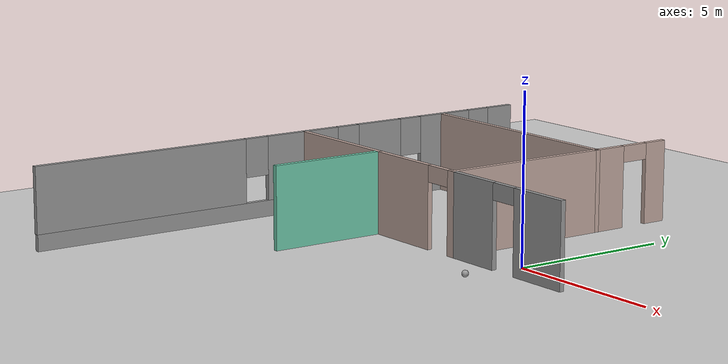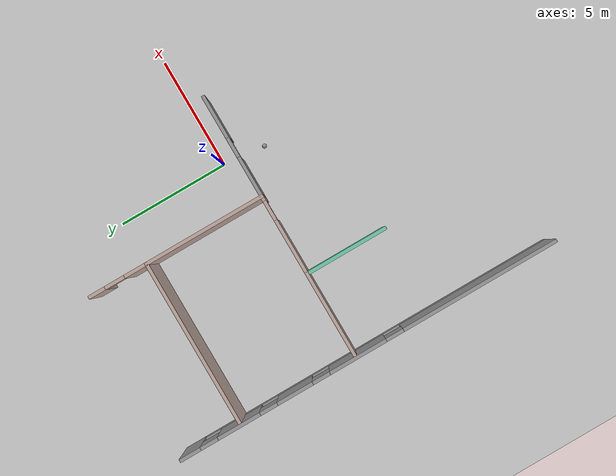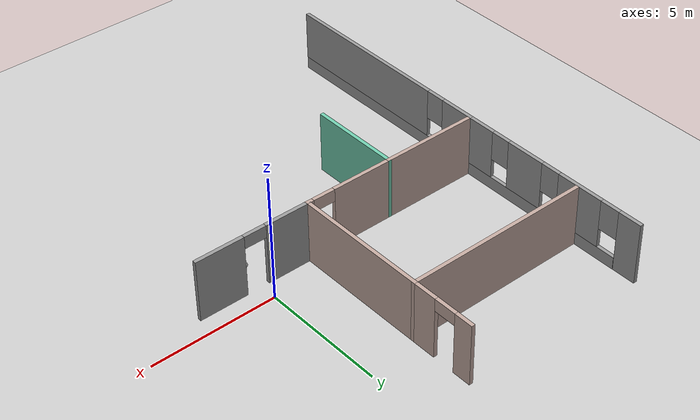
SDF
<sdf version="1.6">
 <world name="default">
  <model name="ground_plane">
   <static>1</static>
   <link name="link">
    <collision name="collision">
     <geometry><plane><normal>0 0 1</normal><size>100 100</size></plane></geometry>
     <surface>
      <contact><collide_bitmask>65535</collide_bitmask></contact>
      <friction><ode><mu>100</mu><mu2>50</mu2></ode></friction>
     </surface>
    </collision>
    <visual name="visual">
     <cast_shadows>0</cast_shadows>
     <geometry><plane><normal>0 0 1</normal><size>100 100</size></plane></geometry>
     <material>
      <script><uri>file://media/materials/scripts/gazebo.material</uri><name>Gazebo/Grey</name></script>
     </material>
    </visual>
   </link>
  </model>
  <model name="my_ball">
   <link name="link_0">
    <inertial>
     <mass>0.3</mass>
     <inertia><ixx>0.1</ixx><ixy>0</ixy><ixz>0</ixz><iyy>0.1</iyy><iyz>0</iyz><izz>0.1</izz></inertia>
    </inertial>
    <visual name="visual">
     <geometry><sphere><radius>0.1</radius></sphere></geometry>
     <material>
      <lighting>1</lighting>
      <script><uri>file://media/materials/scripts/gazebo.material</uri><name>Gazebo/Grey</name></script>
      <shader type="pixel"><normal_map>__default__</normal_map></shader>
      <ambient>1 1 1 1</ambient>
      <diffuse>0.7 0.7 0.7 1</diffuse>
      <specular>0.01 0.01 0.01 1</specular>
      <emissive>0 0 0 1</emissive>
     </material>
    </visual>
    <collision name="collision">
     <geometry><sphere><radius>0.1</radius></sphere></geometry>
     <surface>
      <friction>
       <ode><mu>1</mu><mu2>1</mu2><fdir1>0 0 0</fdir1><slip1>0</slip1><slip2>0</slip2></ode>
       <torsional>
        <coefficient>1</coefficient>
        <patch_radius>0</patch_radius>
        <surface_radius>0</surface_radius>
        <use_patch_radius>1</use_patch_radius>
        <ode><slip>0</slip></ode>
       </torsional>
      </friction>
      <bounce><restitution_coefficient>0</restitution_coefficient><threshold>1e+06</threshold></bounce>
      <contact>
       <collide_without_contact>0</collide_without_contact>
       <collide_without_contact_bitmask>1</collide_without_contact_bitmask>
       <collide_bitmask>1</collide_bitmask>
       <ode>
        <soft_cfm>0</soft_cfm>
        <soft_erp>0.2</soft_erp>
        <kp>1e+13</kp>
        <kd>1</kd>
        <max_vel>0.01</max_vel>
        <min_depth>0</min_depth>
       </ode>
       <bullet>
        <split_impulse>1</split_impulse>
        <split_impulse_penetration_threshold>-0.01</split_impulse_penetration_threshold>
        <soft_cfm>0</soft_cfm>
        <soft_erp>0.2</soft_erp>
        <kp>1e+13</kp>
        <kd>1</kd>
       </bullet>
      </contact>
     </surface>
    </collision>
   </link>
   <static>0</static>
   <pose>-0.177951 -1.88001 0.1 0 -0 0</pose>
  </model>
  <model name="Building">
   <link name="Wall_1">
    <pose>-10.4348 0 0 0 0 -1.5708</pose>
    <inertial>
     <mass>1</mass>
     <inertia><ixx>1</ixx><ixy>0</ixy><ixz>0</ixz><iyy>1</iyy><iyz>0</iyz><izz>1</izz></inertia>
    </inertial>
    <visual name="Wall_1_Visual_8">
     <pose>-2.17654 0 1.9 0 -0 0</pose>
     <geometry><box><size>0.8 0.15 1.2</size></box></geometry>
     <material>
      <script><uri>file://media/materials/scripts/gazebo.material</uri><name>Gazebo/Grey</name></script>
      <ambient>0.5 0.5 0.5 1</ambient>
      <shader type="pixel"><normal_map>__default__</normal_map></shader>
      <diffuse>0.7 0.7 0.7 1</diffuse>
      <specular>0.01 0.01 0.01 1</specular>
      <emissive>0 0 0 1</emissive>
     </material>
     <meta><layer>0</layer></meta>
    </visual>
    <visual name="Wall_1_Visual_3">
     <pose>-3.3971 0 1.5 0 -0 0</pose>
     <geometry><box><size>1.64112 0.15 2</size></box></geometry>
     <material>
      <script><uri>file://media/materials/scripts/gazebo.material</uri><name>Gazebo/Grey</name></script>
      <ambient>0.5 0.5 0.5 1</ambient>
      <shader type="pixel"><normal_map>__default__</normal_map></shader>
      <diffuse>0.7 0.7 0.7 1</diffuse>
      <specular>0.01 0.01 0.01 1</specular>
      <emissive>0 0 0 1</emissive>
     </material>
     <meta><layer>0</layer></meta>
    </visual>
    <visual name="Wall_1_Visual_6">
     <pose>-7.38426 0 1.9 0 -0 0</pose>
     <geometry><box><size>0.8 0.15 1.2</size></box></geometry>
     <material>
      <script><uri>file://media/materials/scripts/gazebo.material</uri><name>Gazebo/Grey</name></script>
      <ambient>0.5 0.5 0.5 1</ambient>
      <shader type="pixel"><normal_map>__default__</normal_map></shader>
      <diffuse>0.7 0.7 0.7 1</diffuse>
      <specular>0.01 0.01 0.01 1</specular>
      <emissive>0 0 0 1</emissive>
     </material>
     <meta><layer>0</layer></meta>
    </visual>
    <visual name="Wall_1_Visual_2">
     <pose>-6.00096 0 1.5 0 -0 0</pose>
     <geometry><box><size>1.9666 0.15 2</size></box></geometry>
     <material>
      <script><uri>file://media/materials/scripts/gazebo.material</uri><name>Gazebo/Grey</name></script>
      <ambient>0.5 0.5 0.5 1</ambient>
      <shader type="pixel"><normal_map>__default__</normal_map></shader>
      <diffuse>0.7 0.7 0.7 1</diffuse>
      <specular>0.01 0.01 0.01 1</specular>
      <emissive>0 0 0 1</emissive>
     </material>
     <meta><layer>0</layer></meta>
    </visual>
    <visual name="Wall_1_Visual_1">
     <pose>0.482871 0 0.25 0 -0 0</pose>
     <geometry><box><size>16.5043 0.15 0.5</size></box></geometry>
     <material>
      <script><uri>file://media/materials/scripts/gazebo.material</uri><name>Gazebo/Grey</name></script>
      <ambient>0.5 0.5 0.5 1</ambient>
      <shader type="pixel"><normal_map>__default__</normal_map></shader>
      <diffuse>0.7 0.7 0.7 1</diffuse>
      <specular>0.01 0.01 0.01 1</specular>
      <emissive>0 0 0 1</emissive>
     </material>
     <meta><layer>0</layer></meta>
    </visual>
    <visual name="Wall_1_Visual_0">
     <pose>-8.26713 0 1.25 0 -0 0</pose>
     <geometry><box><size>0.965742 0.15 2.5</size></box></geometry>
     <material>
      <script><uri>file://media/materials/scripts/gazebo.material</uri><name>Gazebo/Grey</name></script>
      <ambient>0.5 0.5 0.5 1</ambient>
      <shader type="pixel"><normal_map>__default__</normal_map></shader>
      <diffuse>0.7 0.7 0.7 1</diffuse>
      <specular>0.01 0.01 0.01 1</specular>
      <emissive>0 0 0 1</emissive>
     </material>
     <meta><layer>0</layer></meta>
    </visual>
    <visual name="Wall_1_Visual_7">
     <pose>-4.61766 0 1.9 0 -0 0</pose>
     <geometry><box><size>0.8 0.15 1.2</size></box></geometry>
     <material>
      <script><uri>file://media/materials/scripts/gazebo.material</uri><name>Gazebo/Grey</name></script>
      <ambient>0.5 0.5 0.5 1</ambient>
      <shader type="pixel"><normal_map>__default__</normal_map></shader>
      <diffuse>0.7 0.7 0.7 1</diffuse>
      <specular>0.01 0.01 0.01 1</specular>
      <emissive>0 0 0 1</emissive>
     </material>
     <meta><layer>0</layer></meta>
    </visual>
    <visual name="Wall_1_Visual_4">
     <pose>-0.467756 0 1.5 0 -0 0</pose>
     <geometry><box><size>2.61757 0.15 2</size></box></geometry>
     <material>
      <script><uri>file://media/materials/scripts/gazebo.material</uri><name>Gazebo/Grey</name></script>
      <ambient>0.5 0.5 0.5 1</ambient>
      <shader type="pixel"><normal_map>__default__</normal_map></shader>
      <diffuse>0.7 0.7 0.7 1</diffuse>
      <specular>0.01 0.01 0.01 1</specular>
      <emissive>0 0 0 1</emissive>
     </material>
     <meta><layer>0</layer></meta>
    </visual>
    <visual name="Wall_1_Visual_9">
     <pose>1.24103 0 1.9 0 -0 0</pose>
     <geometry><box><size>0.8 0.15 1.2</size></box></geometry>
     <material>
      <script><uri>file://media/materials/scripts/gazebo.material</uri><name>Gazebo/Grey</name></script>
      <ambient>0.5 0.5 0.5 1</ambient>
      <shader type="pixel"><normal_map>__default__</normal_map></shader>
      <diffuse>0.7 0.7 0.7 1</diffuse>
      <specular>0.01 0.01 0.01 1</specular>
      <emissive>0 0 0 1</emissive>
     </material>
     <meta><layer>0</layer></meta>
    </visual>
    <visual name="Wall_1_Visual_5">
     <pose>5.19551 0 1.5 0 -0 0</pose>
     <geometry><box><size>7.10897 0.15 2</size></box></geometry>
     <material>
      <script><uri>file://media/materials/scripts/gazebo.material</uri><name>Gazebo/Grey</name></script>
      <ambient>0.5 0.5 0.5 1</ambient>
      <shader type="pixel"><normal_map>__default__</normal_map></shader>
      <diffuse>0.7 0.7 0.7 1</diffuse>
      <specular>0.01 0.01 0.01 1</specular>
      <emissive>0 0 0 1</emissive>
     </material>
     <meta><layer>0</layer></meta>
    </visual>
    <collision name="Wall_1_Collision_9">
     <pose>1.24103 0 1.9 0 -0 0</pose>
     <geometry><box><size>0.8 0.15 1.2</size></box></geometry>
     <surface>
      <friction>
       <ode><mu>1</mu><mu2>1</mu2><fdir1>0 0 0</fdir1><slip1>0</slip1><slip2>0</slip2></ode>
       <torsional>
        <coefficient>1</coefficient>
        <patch_radius>0</patch_radius>
        <surface_radius>0</surface_radius>
        <use_patch_radius>1</use_patch_radius>
        <ode><slip>0</slip></ode>
       </torsional>
      </friction>
      <bounce><restitution_coefficient>0</restitution_coefficient><threshold>1e+06</threshold></bounce>
      <contact>
       <collide_without_contact>0</collide_without_contact>
       <collide_without_contact_bitmask>1</collide_without_contact_bitmask>
       <collide_bitmask>1</collide_bitmask>
       <ode>
        <soft_cfm>0</soft_cfm>
        <soft_erp>0.2</soft_erp>
        <kp>1e+13</kp>
        <kd>1</kd>
        <max_vel>0.01</max_vel>
        <min_depth>0</min_depth>
       </ode>
       <bullet>
        <split_impulse>1</split_impulse>
        <split_impulse_penetration_threshold>-0.01</split_impulse_penetration_threshold>
        <soft_cfm>0</soft_cfm>
        <soft_erp>0.2</soft_erp>
        <kp>1e+13</kp>
        <kd>1</kd>
       </bullet>
      </contact>
     </surface>
    </collision>
    <collision name="Wall_1_Collision_8">
     <pose>-2.17654 0 1.9 0 -0 0</pose>
     <geometry><box><size>0.8 0.15 1.2</size></box></geometry>
     <surface>
      <friction>
       <ode><mu>1</mu><mu2>1</mu2><fdir1>0 0 0</fdir1><slip1>0</slip1><slip2>0</slip2></ode>
       <torsional>
        <coefficient>1</coefficient>
        <patch_radius>0</patch_radius>
        <surface_radius>0</surface_radius>
        <use_patch_radius>1</use_patch_radius>
        <ode><slip>0</slip></ode>
       </torsional>
      </friction>
      <bounce><restitution_coefficient>0</restitution_coefficient><threshold>1e+06</threshold></bounce>
      <contact>
       <collide_without_contact>0</collide_without_contact>
       <collide_without_contact_bitmask>1</collide_without_contact_bitmask>
       <collide_bitmask>1</collide_bitmask>
       <ode>
        <soft_cfm>0</soft_cfm>
        <soft_erp>0.2</soft_erp>
        <kp>1e+13</kp>
        <kd>1</kd>
        <max_vel>0.01</max_vel>
        <min_depth>0</min_depth>
       </ode>
       <bullet>
        <split_impulse>1</split_impulse>
        <split_impulse_penetration_threshold>-0.01</split_impulse_penetration_threshold>
        <soft_cfm>0</soft_cfm>
        <soft_erp>0.2</soft_erp>
        <kp>1e+13</kp>
        <kd>1</kd>
       </bullet>
      </contact>
     </surface>
    </collision>
    <collision name="Wall_1_Collision_5">
     <pose>5.19551 0 1.5 0 -0 0</pose>
     <geometry><box><size>7.10897 0.15 2</size></box></geometry>
     <surface>
      <friction>
       <ode><mu>1</mu><mu2>1</mu2><fdir1>0 0 0</fdir1><slip1>0</slip1><slip2>0</slip2></ode>
       <torsional>
        <coefficient>1</coefficient>
        <patch_radius>0</patch_radius>
        <surface_radius>0</surface_radius>
        <use_patch_radius>1</use_patch_radius>
        <ode><slip>0</slip></ode>
       </torsional>
      </friction>
      <bounce><restitution_coefficient>0</restitution_coefficient><threshold>1e+06</threshold></bounce>
      <contact>
       <collide_without_contact>0</collide_without_contact>
       <collide_without_contact_bitmask>1</collide_without_contact_bitmask>
       <collide_bitmask>1</collide_bitmask>
       <ode>
        <soft_cfm>0</soft_cfm>
        <soft_erp>0.2</soft_erp>
        <kp>1e+13</kp>
        <kd>1</kd>
        <max_vel>0.01</max_vel>
        <min_depth>0</min_depth>
       </ode>
       <bullet>
        <split_impulse>1</split_impulse>
        <split_impulse_penetration_threshold>-0.01</split_impulse_penetration_threshold>
        <soft_cfm>0</soft_cfm>
        <soft_erp>0.2</soft_erp>
        <kp>1e+13</kp>
        <kd>1</kd>
       </bullet>
      </contact>
     </surface>
    </collision>
    <collision name="Wall_1_Collision_6">
     <pose>-7.38426 0 1.9 0 -0 0</pose>
     <geometry><box><size>0.8 0.15 1.2</size></box></geometry>
     <surface>
      <friction>
       <ode><mu>1</mu><mu2>1</mu2><fdir1>0 0 0</fdir1><slip1>0</slip1><slip2>0</slip2></ode>
       <torsional>
        <coefficient>1</coefficient>
        <patch_radius>0</patch_radius>
        <surface_radius>0</surface_radius>
        <use_patch_radius>1</use_patch_radius>
        <ode><slip>0</slip></ode>
       </torsional>
      </friction>
      <bounce><restitution_coefficient>0</restitution_coefficient><threshold>1e+06</threshold></bounce>
      <contact>
       <collide_without_contact>0</collide_without_contact>
       <collide_without_contact_bitmask>1</collide_without_contact_bitmask>
       <collide_bitmask>1</collide_bitmask>
       <ode>
        <soft_cfm>0</soft_cfm>
        <soft_erp>0.2</soft_erp>
        <kp>1e+13</kp>
        <kd>1</kd>
        <max_vel>0.01</max_vel>
        <min_depth>0</min_depth>
       </ode>
       <bullet>
        <split_impulse>1</split_impulse>
        <split_impulse_penetration_threshold>-0.01</split_impulse_penetration_threshold>
        <soft_cfm>0</soft_cfm>
        <soft_erp>0.2</soft_erp>
        <kp>1e+13</kp>
        <kd>1</kd>
       </bullet>
      </contact>
     </surface>
    </collision>
    <collision name="Wall_1_Collision_0">
     <pose>-8.26713 0 1.25 0 -0 0</pose>
     <geometry><box><size>0.965742 0.15 2.5</size></box></geometry>
     <surface>
      <friction>
       <ode><mu>1</mu><mu2>1</mu2><fdir1>0 0 0</fdir1><slip1>0</slip1><slip2>0</slip2></ode>
       <torsional>
        <coefficient>1</coefficient>
        <patch_radius>0</patch_radius>
        <surface_radius>0</surface_radius>
        <use_patch_radius>1</use_patch_radius>
        <ode><slip>0</slip></ode>
       </torsional>
      </friction>
      <bounce><restitution_coefficient>0</restitution_coefficient><threshold>1e+06</threshold></bounce>
      <contact>
       <collide_without_contact>0</collide_without_contact>
       <collide_without_contact_bitmask>1</collide_without_contact_bitmask>
       <collide_bitmask>1</collide_bitmask>
       <ode>
        <soft_cfm>0</soft_cfm>
        <soft_erp>0.2</soft_erp>
        <kp>1e+13</kp>
        <kd>1</kd>
        <max_vel>0.01</max_vel>
        <min_depth>0</min_depth>
       </ode>
       <bullet>
        <split_impulse>1</split_impulse>
        <split_impulse_penetration_threshold>-0.01</split_impulse_penetration_threshold>
        <soft_cfm>0</soft_cfm>
        <soft_erp>0.2</soft_erp>
        <kp>1e+13</kp>
        <kd>1</kd>
       </bullet>
      </contact>
     </surface>
    </collision>
    <collision name="Wall_1_Collision_1">
     <pose>0.482871 0 0.25 0 -0 0</pose>
     <geometry><box><size>16.5343 0.15 0.5</size></box></geometry>
     <surface>
      <friction>
       <ode><mu>1</mu><mu2>1</mu2><fdir1>0 0 0</fdir1><slip1>0</slip1><slip2>0</slip2></ode>
       <torsional>
        <coefficient>1</coefficient>
        <patch_radius>0</patch_radius>
        <surface_radius>0</surface_radius>
        <use_patch_radius>1</use_patch_radius>
        <ode><slip>0</slip></ode>
       </torsional>
      </friction>
      <bounce><restitution_coefficient>0</restitution_coefficient><threshold>1e+06</threshold></bounce>
      <contact>
       <collide_without_contact>0</collide_without_contact>
       <collide_without_contact_bitmask>1</collide_without_contact_bitmask>
       <collide_bitmask>1</collide_bitmask>
       <ode>
        <soft_cfm>0</soft_cfm>
        <soft_erp>0.2</soft_erp>
        <kp>1e+13</kp>
        <kd>1</kd>
        <max_vel>0.01</max_vel>
        <min_depth>0</min_depth>
       </ode>
       <bullet>
        <split_impulse>1</split_impulse>
        <split_impulse_penetration_threshold>-0.01</split_impulse_penetration_threshold>
        <soft_cfm>0</soft_cfm>
        <soft_erp>0.2</soft_erp>
        <kp>1e+13</kp>
        <kd>1</kd>
       </bullet>
      </contact>
     </surface>
    </collision>
    <collision name="Wall_1_Collision_4">
     <pose>-0.467756 0 1.5 0 -0 0</pose>
     <geometry><box><size>2.61757 0.15 2</size></box></geometry>
     <surface>
      <friction>
       <ode><mu>1</mu><mu2>1</mu2><fdir1>0 0 0</fdir1><slip1>0</slip1><slip2>0</slip2></ode>
       <torsional>
        <coefficient>1</coefficient>
        <patch_radius>0</patch_radius>
        <surface_radius>0</surface_radius>
        <use_patch_radius>1</use_patch_radius>
        <ode><slip>0</slip></ode>
       </torsional>
      </friction>
      <bounce><restitution_coefficient>0</restitution_coefficient><threshold>1e+06</threshold></bounce>
      <contact>
       <collide_without_contact>0</collide_without_contact>
       <collide_without_contact_bitmask>1</collide_without_contact_bitmask>
       <collide_bitmask>1</collide_bitmask>
       <ode>
        <soft_cfm>0</soft_cfm>
        <soft_erp>0.2</soft_erp>
        <kp>1e+13</kp>
        <kd>1</kd>
        <max_vel>0.01</max_vel>
        <min_depth>0</min_depth>
       </ode>
       <bullet>
        <split_impulse>1</split_impulse>
        <split_impulse_penetration_threshold>-0.01</split_impulse_penetration_threshold>
        <soft_cfm>0</soft_cfm>
        <soft_erp>0.2</soft_erp>
        <kp>1e+13</kp>
        <kd>1</kd>
       </bullet>
      </contact>
     </surface>
    </collision>
    <collision name="Wall_1_Collision_7">
     <pose>-4.61766 0 1.9 0 -0 0</pose>
     <geometry><box><size>0.8 0.15 1.2</size></box></geometry>
     <surface>
      <friction>
       <ode><mu>1</mu><mu2>1</mu2><fdir1>0 0 0</fdir1><slip1>0</slip1><slip2>0</slip2></ode>
       <torsional>
        <coefficient>1</coefficient>
        <patch_radius>0</patch_radius>
        <surface_radius>0</surface_radius>
        <use_patch_radius>1</use_patch_radius>
        <ode><slip>0</slip></ode>
       </torsional>
      </friction>
      <bounce><restitution_coefficient>0</restitution_coefficient><threshold>1e+06</threshold></bounce>
      <contact>
       <collide_without_contact>0</collide_without_contact>
       <collide_without_contact_bitmask>1</collide_without_contact_bitmask>
       <collide_bitmask>1</collide_bitmask>
       <ode>
        <soft_cfm>0</soft_cfm>
        <soft_erp>0.2</soft_erp>
        <kp>1e+13</kp>
        <kd>1</kd>
        <max_vel>0.01</max_vel>
        <min_depth>0</min_depth>
       </ode>
       <bullet>
        <split_impulse>1</split_impulse>
        <split_impulse_penetration_threshold>-0.01</split_impulse_penetration_threshold>
        <soft_cfm>0</soft_cfm>
        <soft_erp>0.2</soft_erp>
        <kp>1e+13</kp>
        <kd>1</kd>
       </bullet>
      </contact>
     </surface>
    </collision>
    <collision name="Wall_1_Collision_3">
     <pose>-3.3971 0 1.5 0 -0 0</pose>
     <geometry><box><size>1.64112 0.15 2</size></box></geometry>
     <surface>
      <friction>
       <ode><mu>1</mu><mu2>1</mu2><fdir1>0 0 0</fdir1><slip1>0</slip1><slip2>0</slip2></ode>
       <torsional>
        <coefficient>1</coefficient>
        <patch_radius>0</patch_radius>
        <surface_radius>0</surface_radius>
        <use_patch_radius>1</use_patch_radius>
        <ode><slip>0</slip></ode>
       </torsional>
      </friction>
      <bounce><restitution_coefficient>0</restitution_coefficient><threshold>1e+06</threshold></bounce>
      <contact>
       <collide_without_contact>0</collide_without_contact>
       <collide_without_contact_bitmask>1</collide_without_contact_bitmask>
       <collide_bitmask>1</collide_bitmask>
       <ode>
        <soft_cfm>0</soft_cfm>
        <soft_erp>0.2</soft_erp>
        <kp>1e+13</kp>
        <kd>1</kd>
        <max_vel>0.01</max_vel>
        <min_depth>0</min_depth>
       </ode>
       <bullet>
        <split_impulse>1</split_impulse>
        <split_impulse_penetration_threshold>-0.01</split_impulse_penetration_threshold>
        <soft_cfm>0</soft_cfm>
        <soft_erp>0.2</soft_erp>
        <kp>1e+13</kp>
        <kd>1</kd>
       </bullet>
      </contact>
     </surface>
    </collision>
    <collision name="Wall_1_Collision_2">
     <pose>-6.00096 0 1.5 0 -0 0</pose>
     <geometry><box><size>1.9666 0.15 2</size></box></geometry>
     <surface>
      <friction>
       <ode><mu>1</mu><mu2>1</mu2><fdir1>0 0 0</fdir1><slip1>0</slip1><slip2>0</slip2></ode>
       <torsional>
        <coefficient>1</coefficient>
        <patch_radius>0</patch_radius>
        <surface_radius>0</surface_radius>
        <use_patch_radius>1</use_patch_radius>
        <ode><slip>0</slip></ode>
       </torsional>
      </friction>
      <bounce><restitution_coefficient>0</restitution_coefficient><threshold>1e+06</threshold></bounce>
      <contact>
       <collide_without_contact>0</collide_without_contact>
       <collide_without_contact_bitmask>1</collide_without_contact_bitmask>
       <collide_bitmask>1</collide_bitmask>
       <ode>
        <soft_cfm>0</soft_cfm>
        <soft_erp>0.2</soft_erp>
        <kp>1e+13</kp>
        <kd>1</kd>
        <max_vel>0.01</max_vel>
        <min_depth>0</min_depth>
       </ode>
       <bullet>
        <split_impulse>1</split_impulse>
        <split_impulse_penetration_threshold>-0.01</split_impulse_penetration_threshold>
        <soft_cfm>0</soft_cfm>
        <soft_erp>0.2</soft_erp>
        <kp>1e+13</kp>
        <kd>1</kd>
       </bullet>
      </contact>
     </surface>
    </collision>
   </link>
   <link name="Wall_10">
    <pose>-8.46331 0.559038 0 0 -0 3.14159</pose>
    <visual name="Wall_10_Visual">
     <pose>0 0 1.25 0 -0 0</pose>
     <geometry><box><size>4 0.15 2.5</size></box></geometry>
     <material>
      <script><uri>file://media/materials/scripts/gazebo.material</uri><name>Gazebo/Grey</name></script>
      <ambient>0.760784 0.662745 0.627451 1</ambient>
      <shader type="pixel"/>
      <diffuse>0.7 0.7 0.7 1</diffuse>
      <specular>0.01 0.01 0.01 1</specular>
      <emissive>0 0 0 1</emissive>
     </material>
     <meta><layer>0</layer></meta>
    </visual>
    <collision name="Wall_10_Collision">
     <pose>0 0 1.25 0 -0 0</pose>
     <geometry><box><size>4 0.15 2.5</size></box></geometry>
     <surface>
      <friction>
       <ode><mu>1</mu><mu2>1</mu2><fdir1>0 0 0</fdir1><slip1>0</slip1><slip2>0</slip2></ode>
       <torsional>
        <coefficient>1</coefficient>
        <patch_radius>0</patch_radius>
        <surface_radius>0</surface_radius>
        <use_patch_radius>1</use_patch_radius>
        <ode><slip>0</slip></ode>
       </torsional>
      </friction>
      <bounce><restitution_coefficient>0</restitution_coefficient><threshold>1e+06</threshold></bounce>
      <contact>
       <collide_without_contact>0</collide_without_contact>
       <collide_without_contact_bitmask>1</collide_without_contact_bitmask>
       <collide_bitmask>1</collide_bitmask>
       <ode>
        <soft_cfm>0</soft_cfm>
        <soft_erp>0.2</soft_erp>
        <kp>1e+13</kp>
        <kd>1</kd>
        <max_vel>0.01</max_vel>
        <min_depth>0</min_depth>
       </ode>
       <bullet>
        <split_impulse>1</split_impulse>
        <split_impulse_penetration_threshold>-0.01</split_impulse_penetration_threshold>
        <soft_cfm>0</soft_cfm>
        <soft_erp>0.2</soft_erp>
        <kp>1e+13</kp>
        <kd>1</kd>
       </bullet>
      </contact>
     </surface>
    </collision>
   </link>
   <link name="Wall_12">
    <pose>-4.73832 0.559038 0 0 -0 0</pose>
    <visual name="Wall_12_Visual_1">
     <pose>1.73227 0 1.25 0 -0 0</pose>
     <geometry><box><size>0.285456 0.15 2.5</size></box></geometry>
     <material>
      <script><uri>file://media/materials/scripts/gazebo.material</uri><name>Gazebo/Grey</name></script>
      <ambient>0.760784 0.662745 0.627451 1</ambient>
      <shader type="pixel"/>
      <diffuse>0.7 0.7 0.7 1</diffuse>
      <specular>0.01 0.01 0.01 1</specular>
      <emissive>0 0 0 1</emissive>
     </material>
     <meta><layer>0</layer></meta>
    </visual>
    <visual name="Wall_12_Visual_2">
     <pose>1.13954 0 2.25 0 -0 0</pose>
     <geometry><box><size>0.9 0.15 0.5</size></box></geometry>
     <material>
      <script><uri>file://media/materials/scripts/gazebo.material</uri><name>Gazebo/Grey</name></script>
      <ambient>0.760784 0.662745 0.627451 1</ambient>
      <shader type="pixel"/>
      <diffuse>0.7 0.7 0.7 1</diffuse>
      <specular>0.01 0.01 0.01 1</specular>
      <emissive>0 0 0 1</emissive>
     </material>
     <meta><layer>0</layer></meta>
    </visual>
    <visual name="Wall_12_Visual_0">
     <pose>-0.592728 0 1.25 0 -0 0</pose>
     <geometry><box><size>2.56454 0.15 2.5</size></box></geometry>
     <material>
      <script><uri>file://media/materials/scripts/gazebo.material</uri><name>Gazebo/Grey</name></script>
      <ambient>0.760784 0.662745 0.627451 1</ambient>
      <shader type="pixel"/>
      <diffuse>0.7 0.7 0.7 1</diffuse>
      <specular>0.01 0.01 0.01 1</specular>
      <emissive>0 0 0 1</emissive>
     </material>
     <meta><layer>0</layer></meta>
    </visual>
    <collision name="Wall_12_Collision_2">
     <pose>1.13954 0 2.25 0 -0 0</pose>
     <geometry><box><size>0.9 0.15 0.5</size></box></geometry>
     <surface>
      <friction>
       <ode><mu>1</mu><mu2>1</mu2><fdir1>0 0 0</fdir1><slip1>0</slip1><slip2>0</slip2></ode>
       <torsional>
        <coefficient>1</coefficient>
        <patch_radius>0</patch_radius>
        <surface_radius>0</surface_radius>
        <use_patch_radius>1</use_patch_radius>
        <ode><slip>0</slip></ode>
       </torsional>
      </friction>
      <bounce><restitution_coefficient>0</restitution_coefficient><threshold>1e+06</threshold></bounce>
      <contact>
       <collide_without_contact>0</collide_without_contact>
       <collide_without_contact_bitmask>1</collide_without_contact_bitmask>
       <collide_bitmask>1</collide_bitmask>
       <ode>
        <soft_cfm>0</soft_cfm>
        <soft_erp>0.2</soft_erp>
        <kp>1e+13</kp>
        <kd>1</kd>
        <max_vel>0.01</max_vel>
        <min_depth>0</min_depth>
       </ode>
       <bullet>
        <split_impulse>1</split_impulse>
        <split_impulse_penetration_threshold>-0.01</split_impulse_penetration_threshold>
        <soft_cfm>0</soft_cfm>
        <soft_erp>0.2</soft_erp>
        <kp>1e+13</kp>
        <kd>1</kd>
       </bullet>
      </contact>
     </surface>
    </collision>
    <collision name="Wall_12_Collision_1">
     <pose>1.73227 0 1.25 0 -0 0</pose>
     <geometry><box><size>0.285456 0.15 2.5</size></box></geometry>
     <surface>
      <friction>
       <ode><mu>1</mu><mu2>1</mu2><fdir1>0 0 0</fdir1><slip1>0</slip1><slip2>0</slip2></ode>
       <torsional>
        <coefficient>1</coefficient>
        <patch_radius>0</patch_radius>
        <surface_radius>0</surface_radius>
        <use_patch_radius>1</use_patch_radius>
        <ode><slip>0</slip></ode>
       </torsional>
      </friction>
      <bounce><restitution_coefficient>0</restitution_coefficient><threshold>1e+06</threshold></bounce>
      <contact>
       <collide_without_contact>0</collide_without_contact>
       <collide_without_contact_bitmask>1</collide_without_contact_bitmask>
       <collide_bitmask>1</collide_bitmask>
       <ode>
        <soft_cfm>0</soft_cfm>
        <soft_erp>0.2</soft_erp>
        <kp>1e+13</kp>
        <kd>1</kd>
        <max_vel>0.01</max_vel>
        <min_depth>0</min_depth>
       </ode>
       <bullet>
        <split_impulse>1</split_impulse>
        <split_impulse_penetration_threshold>-0.01</split_impulse_penetration_threshold>
        <soft_cfm>0</soft_cfm>
        <soft_erp>0.2</soft_erp>
        <kp>1e+13</kp>
        <kd>1</kd>
       </bullet>
      </contact>
     </surface>
    </collision>
    <collision name="Wall_12_Collision_0">
     <pose>-0.592728 0 1.25 0 -0 0</pose>
     <geometry><box><size>2.56454 0.15 2.5</size></box></geometry>
     <surface>
      <friction>
       <ode><mu>1</mu><mu2>1</mu2><fdir1>0 0 0</fdir1><slip1>0</slip1><slip2>0</slip2></ode>
       <torsional>
        <coefficient>1</coefficient>
        <patch_radius>0</patch_radius>
        <surface_radius>0</surface_radius>
        <use_patch_radius>1</use_patch_radius>
        <ode><slip>0</slip></ode>
       </torsional>
      </friction>
      <bounce><restitution_coefficient>0</restitution_coefficient><threshold>1e+06</threshold></bounce>
      <contact>
       <collide_without_contact>0</collide_without_contact>
       <collide_without_contact_bitmask>1</collide_without_contact_bitmask>
       <collide_bitmask>1</collide_bitmask>
       <ode>
        <soft_cfm>0</soft_cfm>
        <soft_erp>0.2</soft_erp>
        <kp>1e+13</kp>
        <kd>1</kd>
        <max_vel>0.01</max_vel>
        <min_depth>0</min_depth>
       </ode>
       <bullet>
        <split_impulse>1</split_impulse>
        <split_impulse_penetration_threshold>-0.01</split_impulse_penetration_threshold>
        <soft_cfm>0</soft_cfm>
        <soft_erp>0.2</soft_erp>
        <kp>1e+13</kp>
        <kd>1</kd>
       </bullet>
      </contact>
     </surface>
    </collision>
   </link>
   <link name="Wall_13">
    <pose>-2.93835 3.23415 0 0 -0 1.57081</pose>
    <visual name="Wall_13_Visual">
     <pose>0 0 1.25 0 -0 0</pose>
     <geometry><box><size>5.5 0.15 2.5</size></box></geometry>
     <material>
      <script><uri>file://media/materials/scripts/gazebo.material</uri><name>Gazebo/Grey</name></script>
      <ambient>0.760784 0.662745 0.627451 1</ambient>
      <shader type="pixel"/>
      <diffuse>0.7 0.7 0.7 1</diffuse>
      <specular>0.01 0.01 0.01 1</specular>
      <emissive>0 0 0 1</emissive>
     </material>
     <meta><layer>0</layer></meta>
    </visual>
    <collision name="Wall_13_Collision">
     <pose>0 0 1.25 0 -0 0</pose>
     <geometry><box><size>5.5 0.15 2.5</size></box></geometry>
     <surface>
      <friction>
       <ode><mu>1</mu><mu2>1</mu2><fdir1>0 0 0</fdir1><slip1>0</slip1><slip2>0</slip2></ode>
       <torsional>
        <coefficient>1</coefficient>
        <patch_radius>0</patch_radius>
        <surface_radius>0</surface_radius>
        <use_patch_radius>1</use_patch_radius>
        <ode><slip>0</slip></ode>
       </torsional>
      </friction>
      <bounce><restitution_coefficient>0</restitution_coefficient><threshold>1e+06</threshold></bounce>
      <contact>
       <collide_without_contact>0</collide_without_contact>
       <collide_without_contact_bitmask>1</collide_without_contact_bitmask>
       <collide_bitmask>1</collide_bitmask>
       <ode>
        <soft_cfm>0</soft_cfm>
        <soft_erp>0.2</soft_erp>
        <kp>1e+13</kp>
        <kd>1</kd>
        <max_vel>0.01</max_vel>
        <min_depth>0</min_depth>
       </ode>
       <bullet>
        <split_impulse>1</split_impulse>
        <split_impulse_penetration_threshold>-0.01</split_impulse_penetration_threshold>
        <soft_cfm>0</soft_cfm>
        <soft_erp>0.2</soft_erp>
        <kp>1e+13</kp>
        <kd>1</kd>
       </bullet>
      </contact>
     </surface>
    </collision>
   </link>
   <link name="Wall_14">
    <pose>-6.61335 5.90915 0 0 0 -3.14156</pose>
    <visual name="Wall_14_Visual">
     <pose>0 0 1.25 0 -0 0</pose>
     <geometry><box><size>7.5 0.15 2.5</size></box></geometry>
     <material>
      <script><uri>file://media/materials/scripts/gazebo.material</uri><name>Gazebo/Grey</name></script>
      <ambient>0.760784 0.662745 0.627451 1</ambient>
      <shader type="pixel"/>
      <diffuse>0.7 0.7 0.7 1</diffuse>
      <specular>0.01 0.01 0.01 1</specular>
      <emissive>0 0 0 1</emissive>
     </material>
     <meta><layer>0</layer></meta>
    </visual>
    <collision name="Wall_14_Collision">
     <pose>0 0 1.25 0 -0 0</pose>
     <geometry><box><size>7.5 0.15 2.5</size></box></geometry>
     <surface>
      <friction>
       <ode><mu>1</mu><mu2>1</mu2><fdir1>0 0 0</fdir1><slip1>0</slip1><slip2>0</slip2></ode>
       <torsional>
        <coefficient>1</coefficient>
        <patch_radius>0</patch_radius>
        <surface_radius>0</surface_radius>
        <use_patch_radius>1</use_patch_radius>
        <ode><slip>0</slip></ode>
       </torsional>
      </friction>
      <bounce><restitution_coefficient>0</restitution_coefficient><threshold>1e+06</threshold></bounce>
      <contact>
       <collide_without_contact>0</collide_without_contact>
       <collide_without_contact_bitmask>1</collide_without_contact_bitmask>
       <collide_bitmask>1</collide_bitmask>
       <ode>
        <soft_cfm>0</soft_cfm>
        <soft_erp>0.2</soft_erp>
        <kp>1e+13</kp>
        <kd>1</kd>
        <max_vel>0.01</max_vel>
        <min_depth>0</min_depth>
       </ode>
       <bullet>
        <split_impulse>1</split_impulse>
        <split_impulse_penetration_threshold>-0.01</split_impulse_penetration_threshold>
        <soft_cfm>0</soft_cfm>
        <soft_erp>0.2</soft_erp>
        <kp>1e+13</kp>
        <kd>1</kd>
       </bullet>
      </contact>
     </surface>
    </collision>
   </link>
   <link name="Wall_16">
    <pose>-2.93838 7.21526 0 0 -0 1.5708</pose>
    <visual name="Wall_16_Visual_1">
     <pose>0.999999 0 1.25 0 -0 0</pose>
     <geometry><box><size>0.762002 0.15 2.5</size></box></geometry>
     <material>
      <script><uri>file://media/materials/scripts/gazebo.material</uri><name>Gazebo/Grey</name></script>
      <ambient>0.760784 0.662745 0.627451 1</ambient>
      <shader type="pixel"/>
      <diffuse>0.7 0.7 0.7 1</diffuse>
      <specular>0.01 0.01 0.01 1</specular>
      <emissive>0 0 0 1</emissive>
     </material>
     <meta><layer>0</layer></meta>
    </visual>
    <visual name="Wall_16_Visual_2">
     <pose>0.168998 0 2.25 0 -0 0</pose>
     <geometry><box><size>0.9 0.15 0.5</size></box></geometry>
     <material>
      <script><uri>file://media/materials/scripts/gazebo.material</uri><name>Gazebo/Grey</name></script>
      <ambient>0.760784 0.662745 0.627451 1</ambient>
      <shader type="pixel"/>
      <diffuse>0.7 0.7 0.7 1</diffuse>
      <specular>0.01 0.01 0.01 1</specular>
      <emissive>0 0 0 1</emissive>
     </material>
     <meta><layer>0</layer></meta>
    </visual>
    <visual name="Wall_16_Visual_0">
     <pose>-0.831001 0 1.25 0 -0 0</pose>
     <geometry><box><size>1.1 0.15 2.5</size></box></geometry>
     <material>
      <script><uri>file://media/materials/scripts/gazebo.material</uri><name>Gazebo/Grey</name></script>
      <ambient>0.760784 0.662745 0.627451 1</ambient>
      <shader type="pixel"/>
      <diffuse>0.7 0.7 0.7 1</diffuse>
      <specular>0.01 0.01 0.01 1</specular>
      <emissive>0 0 0 1</emissive>
     </material>
     <meta><layer>0</layer></meta>
    </visual>
    <collision name="Wall_16_Collision_2">
     <pose>0.168998 0 2.25 0 -0 0</pose>
     <geometry><box><size>0.9 0.15 0.5</size></box></geometry>
     <surface>
      <friction>
       <ode><mu>1</mu><mu2>1</mu2><fdir1>0 0 0</fdir1><slip1>0</slip1><slip2>0</slip2></ode>
       <torsional>
        <coefficient>1</coefficient>
        <patch_radius>0</patch_radius>
        <surface_radius>0</surface_radius>
        <use_patch_radius>1</use_patch_radius>
        <ode><slip>0</slip></ode>
       </torsional>
      </friction>
      <bounce><restitution_coefficient>0</restitution_coefficient><threshold>1e+06</threshold></bounce>
      <contact>
       <collide_without_contact>0</collide_without_contact>
       <collide_without_contact_bitmask>1</collide_without_contact_bitmask>
       <collide_bitmask>1</collide_bitmask>
       <ode>
        <soft_cfm>0</soft_cfm>
        <soft_erp>0.2</soft_erp>
        <kp>1e+13</kp>
        <kd>1</kd>
        <max_vel>0.01</max_vel>
        <min_depth>0</min_depth>
       </ode>
       <bullet>
        <split_impulse>1</split_impulse>
        <split_impulse_penetration_threshold>-0.01</split_impulse_penetration_threshold>
        <soft_cfm>0</soft_cfm>
        <soft_erp>0.2</soft_erp>
        <kp>1e+13</kp>
        <kd>1</kd>
       </bullet>
      </contact>
     </surface>
    </collision>
    <collision name="Wall_16_Collision_0">
     <pose>-0.831001 0 1.25 0 -0 0</pose>
     <geometry><box><size>1.1 0.15 2.5</size></box></geometry>
     <surface>
      <friction>
       <ode><mu>1</mu><mu2>1</mu2><fdir1>0 0 0</fdir1><slip1>0</slip1><slip2>0</slip2></ode>
       <torsional>
        <coefficient>1</coefficient>
        <patch_radius>0</patch_radius>
        <surface_radius>0</surface_radius>
        <use_patch_radius>1</use_patch_radius>
        <ode><slip>0</slip></ode>
       </torsional>
      </friction>
      <bounce><restitution_coefficient>0</restitution_coefficient><threshold>1e+06</threshold></bounce>
      <contact>
       <collide_without_contact>0</collide_without_contact>
       <collide_without_contact_bitmask>1</collide_without_contact_bitmask>
       <collide_bitmask>1</collide_bitmask>
       <ode>
        <soft_cfm>0</soft_cfm>
        <soft_erp>0.2</soft_erp>
        <kp>1e+13</kp>
        <kd>1</kd>
        <max_vel>0.01</max_vel>
        <min_depth>0</min_depth>
       </ode>
       <bullet>
        <split_impulse>1</split_impulse>
        <split_impulse_penetration_threshold>-0.01</split_impulse_penetration_threshold>
        <soft_cfm>0</soft_cfm>
        <soft_erp>0.2</soft_erp>
        <kp>1e+13</kp>
        <kd>1</kd>
       </bullet>
      </contact>
     </surface>
    </collision>
    <collision name="Wall_16_Collision_1">
     <pose>0.999999 0 1.25 0 -0 0</pose>
     <geometry><box><size>0.762002 0.15 2.5</size></box></geometry>
     <surface>
      <friction>
       <ode><mu>1</mu><mu2>1</mu2><fdir1>0 0 0</fdir1><slip1>0</slip1><slip2>0</slip2></ode>
       <torsional>
        <coefficient>1</coefficient>
        <patch_radius>0</patch_radius>
        <surface_radius>0</surface_radius>
        <use_patch_radius>1</use_patch_radius>
        <ode><slip>0</slip></ode>
       </torsional>
      </friction>
      <bounce><restitution_coefficient>0</restitution_coefficient><threshold>1e+06</threshold></bounce>
      <contact>
       <collide_without_contact>0</collide_without_contact>
       <collide_without_contact_bitmask>1</collide_without_contact_bitmask>
       <collide_bitmask>1</collide_bitmask>
       <ode>
        <soft_cfm>0</soft_cfm>
        <soft_erp>0.2</soft_erp>
        <kp>1e+13</kp>
        <kd>1</kd>
        <max_vel>0.01</max_vel>
        <min_depth>0</min_depth>
       </ode>
       <bullet>
        <split_impulse>1</split_impulse>
        <split_impulse_penetration_threshold>-0.01</split_impulse_penetration_threshold>
        <soft_cfm>0</soft_cfm>
        <soft_erp>0.2</soft_erp>
        <kp>1e+13</kp>
        <kd>1</kd>
       </bullet>
      </contact>
     </surface>
    </collision>
   </link>
   <link name="Wall_21">
    <pose>-0.638315 0.559038 0 0 -0 0</pose>
    <inertial>
     <mass>1</mass>
     <inertia><ixx>1</ixx><ixy>0</ixy><ixz>0</ixz><iyy>1</iyy><iyz>0</iyz><izz>1</izz></inertia>
    </inertial>
    <visual name="Wall_21_Visual_2">
     <pose>-0.031114 0 2.25 0 -0 0</pose>
     <geometry><box><size>0.9 0.15 0.5</size></box></geometry>
     <material>
      <script><uri>file://media/materials/scripts/gazebo.material</uri><name>Gazebo/Grey</name></script>
      <ambient>0 0 0 1</ambient>
      <shader type="pixel"><normal_map>__default__</normal_map></shader>
      <diffuse>0.7 0.7 0.7 1</diffuse>
      <specular>0.01 0.01 0.01 1</specular>
      <emissive>0 0 0 1</emissive>
     </material>
     <meta><layer>0</layer></meta>
    </visual>
    <visual name="Wall_21_Visual_0">
     <pose>-1.42806 0 1.25 0 -0 0</pose>
     <geometry><box><size>1.89389 0.15 2.5</size></box></geometry>
     <material>
      <script><uri>file://media/materials/scripts/gazebo.material</uri><name>Gazebo/Grey</name></script>
      <ambient>0 0 0 1</ambient>
      <shader type="pixel"><normal_map>__default__</normal_map></shader>
      <diffuse>0.7 0.7 0.7 1</diffuse>
      <specular>0.01 0.01 0.01 1</specular>
      <emissive>0 0 0 1</emissive>
     </material>
     <meta><layer>0</layer></meta>
    </visual>
    <visual name="Wall_21_Visual_1">
     <pose>1.39694 0 1.25 0 -0 0</pose>
     <geometry><box><size>1.95611 0.15 2.5</size></box></geometry>
     <material>
      <script><uri>file://media/materials/scripts/gazebo.material</uri><name>Gazebo/Grey</name></script>
      <ambient>0 0 0 1</ambient>
      <shader type="pixel"><normal_map>__default__</normal_map></shader>
      <diffuse>0.7 0.7 0.7 1</diffuse>
      <specular>0.01 0.01 0.01 1</specular>
      <emissive>0 0 0 1</emissive>
     </material>
     <meta><layer>0</layer></meta>
    </visual>
    <collision name="Wall_21_Collision_1">
     <pose>1.39694 0 1.25 0 -0 0</pose>
     <geometry><box><size>1.95611 0.15 2.5</size></box></geometry>
     <surface>
      <friction>
       <ode><mu>1</mu><mu2>1</mu2><fdir1>0 0 0</fdir1><slip1>0</slip1><slip2>0</slip2></ode>
       <torsional>
        <coefficient>1</coefficient>
        <patch_radius>0</patch_radius>
        <surface_radius>0</surface_radius>
        <use_patch_radius>1</use_patch_radius>
        <ode><slip>0</slip></ode>
       </torsional>
      </friction>
      <bounce><restitution_coefficient>0</restitution_coefficient><threshold>1e+06</threshold></bounce>
      <contact>
       <collide_without_contact>0</collide_without_contact>
       <collide_without_contact_bitmask>1</collide_without_contact_bitmask>
       <collide_bitmask>1</collide_bitmask>
       <ode>
        <soft_cfm>0</soft_cfm>
        <soft_erp>0.2</soft_erp>
        <kp>1e+13</kp>
        <kd>1</kd>
        <max_vel>0.01</max_vel>
        <min_depth>0</min_depth>
       </ode>
       <bullet>
        <split_impulse>1</split_impulse>
        <split_impulse_penetration_threshold>-0.01</split_impulse_penetration_threshold>
        <soft_cfm>0</soft_cfm>
        <soft_erp>0.2</soft_erp>
        <kp>1e+13</kp>
        <kd>1</kd>
       </bullet>
      </contact>
     </surface>
    </collision>
    <collision name="Wall_21_Collision_2">
     <pose>-0.031114 0 2.25 0 -0 0</pose>
     <geometry><box><size>0.9 0.15 0.5</size></box></geometry>
     <surface>
      <friction>
       <ode><mu>1</mu><mu2>1</mu2><fdir1>0 0 0</fdir1><slip1>0</slip1><slip2>0</slip2></ode>
       <torsional>
        <coefficient>1</coefficient>
        <patch_radius>0</patch_radius>
        <surface_radius>0</surface_radius>
        <use_patch_radius>1</use_patch_radius>
        <ode><slip>0</slip></ode>
       </torsional>
      </friction>
      <bounce><restitution_coefficient>0</restitution_coefficient><threshold>1e+06</threshold></bounce>
      <contact>
       <collide_without_contact>0</collide_without_contact>
       <collide_without_contact_bitmask>1</collide_without_contact_bitmask>
       <collide_bitmask>1</collide_bitmask>
       <ode>
        <soft_cfm>0</soft_cfm>
        <soft_erp>0.2</soft_erp>
        <kp>1e+13</kp>
        <kd>1</kd>
        <max_vel>0.01</max_vel>
        <min_depth>0</min_depth>
       </ode>
       <bullet>
        <split_impulse>1</split_impulse>
        <split_impulse_penetration_threshold>-0.01</split_impulse_penetration_threshold>
        <soft_cfm>0</soft_cfm>
        <soft_erp>0.2</soft_erp>
        <kp>1e+13</kp>
        <kd>1</kd>
       </bullet>
      </contact>
     </surface>
    </collision>
    <collision name="Wall_21_Collision_0">
     <pose>-1.42806 0 1.25 0 -0 0</pose>
     <geometry><box><size>1.89389 0.15 2.5</size></box></geometry>
     <surface>
      <friction>
       <ode><mu>1</mu><mu2>1</mu2><fdir1>0 0 0</fdir1><slip1>0</slip1><slip2>0</slip2></ode>
       <torsional>
        <coefficient>1</coefficient>
        <patch_radius>0</patch_radius>
        <surface_radius>0</surface_radius>
        <use_patch_radius>1</use_patch_radius>
        <ode><slip>0</slip></ode>
       </torsional>
      </friction>
      <bounce><restitution_coefficient>0</restitution_coefficient><threshold>1e+06</threshold></bounce>
      <contact>
       <collide_without_contact>0</collide_without_contact>
       <collide_without_contact_bitmask>1</collide_without_contact_bitmask>
       <collide_bitmask>1</collide_bitmask>
       <ode>
        <soft_cfm>0</soft_cfm>
        <soft_erp>0.2</soft_erp>
        <kp>1e+13</kp>
        <kd>1</kd>
        <max_vel>0.01</max_vel>
        <min_depth>0</min_depth>
       </ode>
       <bullet>
        <split_impulse>1</split_impulse>
        <split_impulse_penetration_threshold>-0.01</split_impulse_penetration_threshold>
        <soft_cfm>0</soft_cfm>
        <soft_erp>0.2</soft_erp>
        <kp>1e+13</kp>
        <kd>1</kd>
       </bullet>
      </contact>
     </surface>
    </collision>
   </link>
   <link name="Wall_9">
    <pose>-6.53831 -1.24096 0 0 -0 1.5708</pose>
    <visual name="Wall_9_Visual">
     <pose>0 0 1.25 0 -0 0</pose>
     <geometry><box><size>3.75 0.15 2.5</size></box></geometry>
     <material>
      <script><uri>file://media/materials/scripts/gazebo.material</uri><name>Gazebo/Grey</name></script>
      <ambient>0.435294 0.796078 0.67451 1</ambient>
      <shader type="pixel"/>
      <diffuse>0.7 0.7 0.7 1</diffuse>
      <specular>0.01 0.01 0.01 1</specular>
      <emissive>0 0 0 1</emissive>
     </material>
     <meta><layer>0</layer></meta>
    </visual>
    <collision name="Wall_9_Collision">
     <pose>0 0 1.25 0 -0 0</pose>
     <geometry><box><size>3.75 0.15 2.5</size></box></geometry>
     <surface>
      <friction>
       <ode><mu>1</mu><mu2>1</mu2><fdir1>0 0 0</fdir1><slip1>0</slip1><slip2>0</slip2></ode>
       <torsional>
        <coefficient>1</coefficient>
        <patch_radius>0</patch_radius>
        <surface_radius>0</surface_radius>
        <use_patch_radius>1</use_patch_radius>
        <ode><slip>0</slip></ode>
       </torsional>
      </friction>
      <bounce><restitution_coefficient>0</restitution_coefficient><threshold>1e+06</threshold></bounce>
      <contact>
       <collide_without_contact>0</collide_without_contact>
       <collide_without_contact_bitmask>1</collide_without_contact_bitmask>
       <collide_bitmask>1</collide_bitmask>
       <ode>
        <soft_cfm>0</soft_cfm>
        <soft_erp>0.2</soft_erp>
        <kp>1e+13</kp>
        <kd>1</kd>
        <max_vel>0.01</max_vel>
        <min_depth>0</min_depth>
       </ode>
       <bullet>
        <split_impulse>1</split_impulse>
        <split_impulse_penetration_threshold>-0.01</split_impulse_penetration_threshold>
        <soft_cfm>0</soft_cfm>
        <soft_erp>0.2</soft_erp>
        <kp>1e+13</kp>
        <kd>1</kd>
       </bullet>
      </contact>
     </surface>
    </collision>
   </link>
   <static>1</static>
   <pose>0.81107 -1.31925 0 0 -0 0</pose>
  </model>
 </world>
</sdf>
